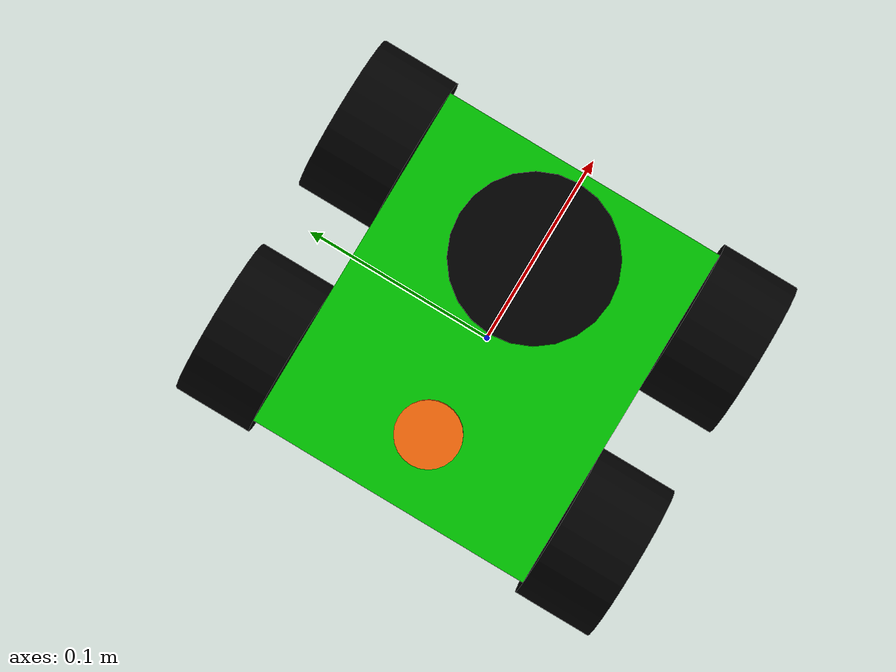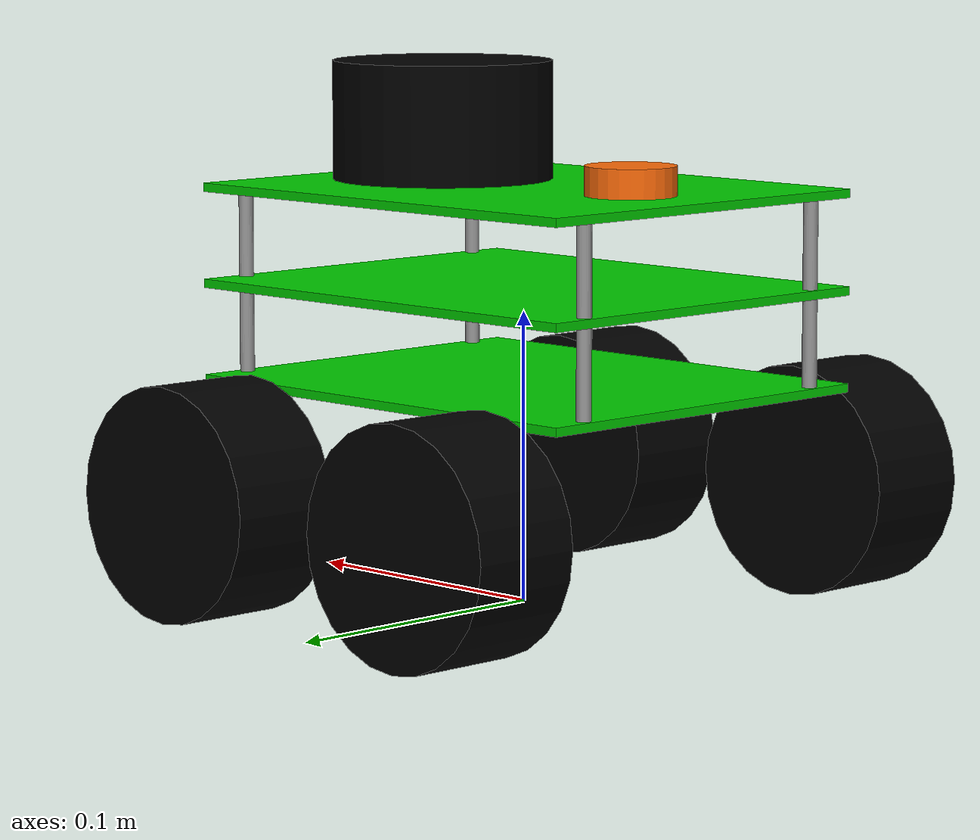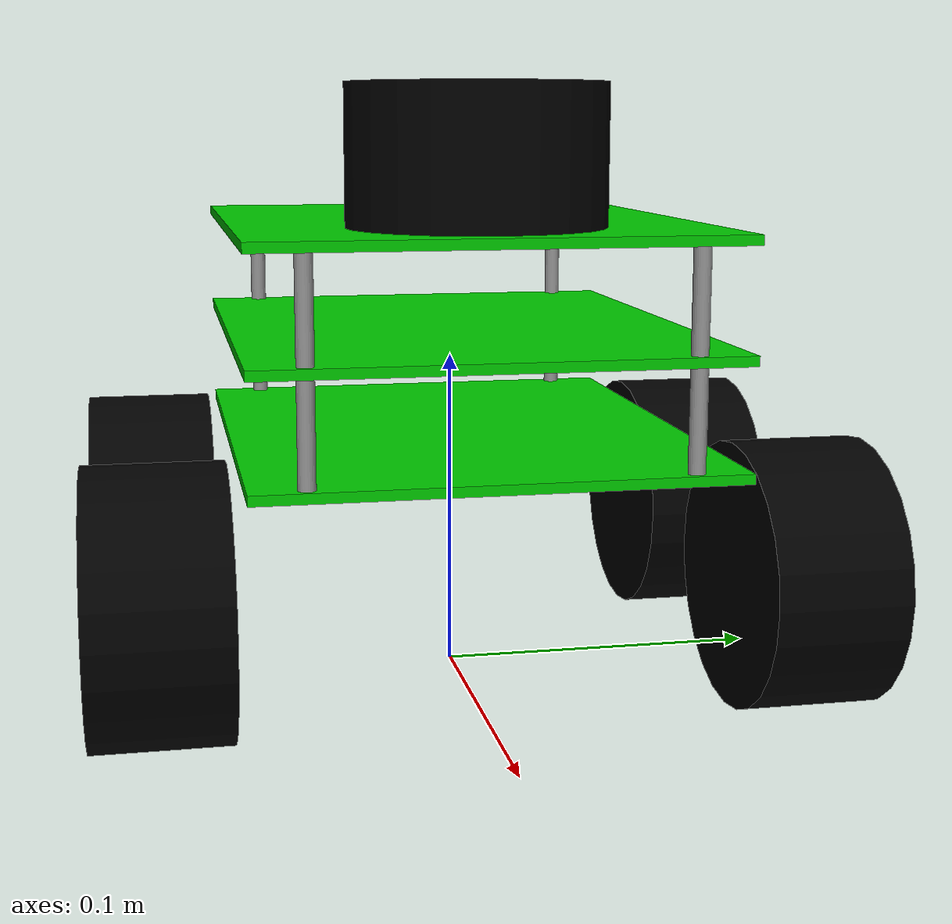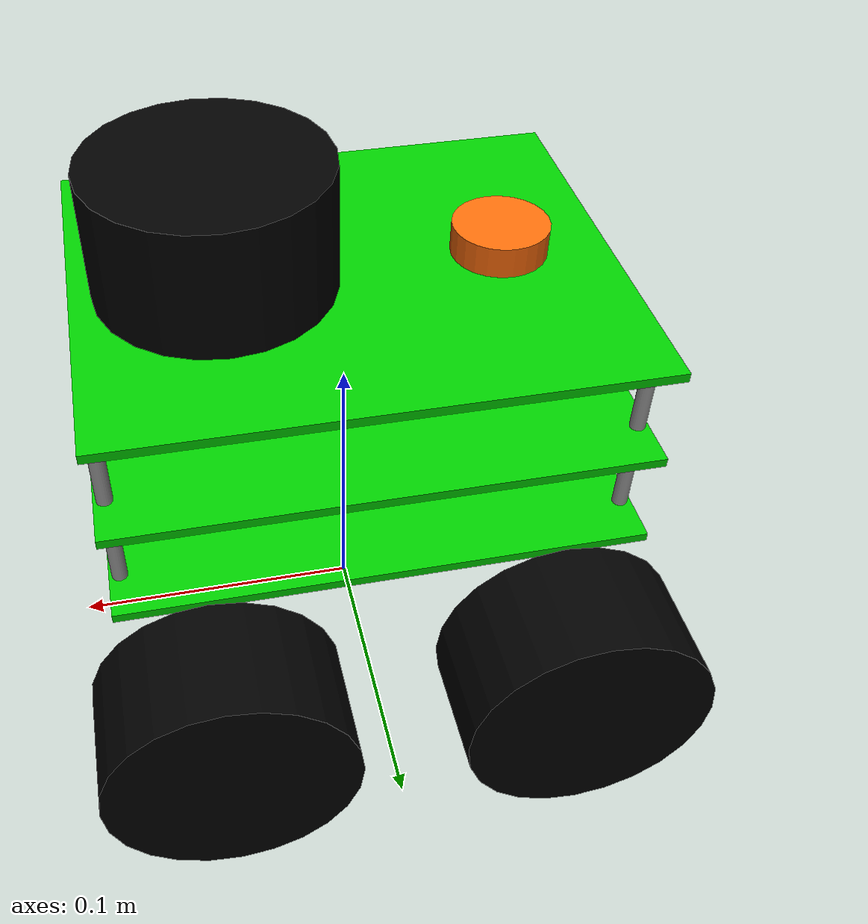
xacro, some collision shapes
<?xml version="1.0"?>
<!-- Main URDF including controller info -->
<robot name="embla" xmlns:xacro="http://www.ros.org/wiki/xacro">

  <!-- Base URDF -->
  <xacro:include filename="embla_description.urdf.xacro" />

  <!-- Import ros2_control -->
  <xacro:include filename="$(find embla_controller)/urdf/embla.ros2_control.xacro" />
  <xacro:embla_ros2_control name="Embla" />
</robot>

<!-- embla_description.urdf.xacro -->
<robot name="embla" xmlns:xacro="http://www.ros.org/wiki/xacro">
	<xacro:property name="PI" value="3.1415926535897931" />

	<!-- Chassis info -->
	<!-- three 3 mm plates + 30 mm spacers between -->
	<xacro:property name="chassisHeight" value="0.069" />
	<xacro:property name="chassisLength" value="0.17" />
	<xacro:property name="chassisWidth" value="0.14" />
	<!-- Total 1950 including 4 x 80 g wheels. Wheels' mass and inertia are specified for each wheel -->
	<xacro:property name="chassisMass" value="1.630" />

	<!-- Distance to bottom of chassis -->
	<xacro:property name="chassisGroundClearance" value="0.074" />

	<!-- Wheel info -->
	<xacro:property name="wheelWidth" value="0.04" />
	<xacro:property name="wheelRadius" value="0.04" />
	<xacro:property name="wheelMass" value="0.08" />

	<!-- Sideways distance between wheel centers -->
	<xacro:property name="wheelYDistance" value="0.1875" />

	<!-- Front/back distance between wheel centers -->
	<xacro:property name="wheelXDistance" value="0.1125" />

	<xacro:include filename="$(find embla_controller)/urdf/macros.xacro" />
	<xacro:include filename="materials.xacro" />

	<link name="base_footprint" />

	<joint name="base_joint" type="fixed">
		<parent link="base_footprint" />
		<child link="base_link" />
		<origin xyz="0 0 ${chassisGroundClearance + chassisHeight/2}" />
	</joint>

	<link name="base_link">
		<collision>
			<origin xyz="0 0 0" rpy="0 0 0" />
			<geometry>
				<box size="${chassisLength} ${chassisWidth} ${chassisHeight}" />
			</geometry>
		</collision>

		<!-- Middle plate -->
		<visual>
			<origin xyz="0 0 0" rpy="0 0 0" />
			<geometry>
				<box size="${chassisLength} ${chassisWidth} 0.003" />
			</geometry>
			<material name="green" />
		</visual>
		<visual name="spacer">
			<origin xyz="${chassisLength/2 - 0.0035} ${chassisWidth/2 - 0.016} 0.0165" rpy="0 0 0" />
			<geometry>
				<cylinder length="0.03" radius="0.0025" />
			</geometry>
			<material name="lightGrey" />
		</visual>
		<visual name="spacer">
			<origin xyz="${chassisLength/2 - 0.0035} ${-chassisWidth/2 + 0.016} 0.0165" rpy="0 0 0" />
			<geometry>
				<cylinder length="0.03" radius="0.0025" />
			</geometry>
			<material name="lightGrey" />
		</visual>
		<visual name="spacer">
			<origin xyz="${-chassisLength/2 + 0.0035} ${chassisWidth/2 - 0.016} 0.0165" rpy="0 0 0" />
			<geometry>
				<cylinder length="0.03" radius="0.0025" />
			</geometry>
			<material name="lightGrey" />
		</visual>
		<visual name="spacer">
			<origin xyz="${-chassisLength/2 + 0.0035} ${-chassisWidth/2 + 0.016} 0.0165" rpy="0 0 0" />
			<geometry>
				<cylinder length="0.03" radius="0.0025" />
			</geometry>
			<material name="lightGrey" />
		</visual>

		<!-- Top plate -->
		<visual>
			<origin xyz="0 0 0.033" rpy="0 0 0" />
			<geometry>
				<box size="${chassisLength} ${chassisWidth} 0.003" />
			</geometry>
			<material name="green" />
		</visual>

		<!-- Bottom plate -->
		<visual>
			<origin xyz="0 0 -0.033" rpy="0 0 0" />
			<geometry>
				<box size="${chassisLength} ${chassisWidth} 0.003" />
			</geometry>
			<material name="green" />
		</visual>
		<visual name="spacer">
			<origin xyz="${chassisLength/2 - 0.0035} ${chassisWidth/2 - 0.016} -0.0165" rpy="0 0 0" />
			<geometry>
				<cylinder length="0.03" radius="0.0025" />
			</geometry>
			<material name="lightGrey" />
		</visual>
		<visual name="spacer">
			<origin xyz="${chassisLength/2 - 0.0035} ${-chassisWidth/2 + 0.016} -0.0165" rpy="0 0 0" />
			<geometry>
				<cylinder length="0.03" radius="0.0025" />
			</geometry>
			<material name="lightGrey" />
		</visual>
		<visual name="spacer">
			<origin xyz="${-chassisLength/2 + 0.0035} ${chassisWidth/2 - 0.016} -0.0165" rpy="0 0 0" />
			<geometry>
				<cylinder length="0.03" radius="0.0025" />
			</geometry>
			<material name="lightGrey" />
		</visual>
		<visual name="spacer">
			<origin xyz="${-chassisLength/2 + 0.0035} ${-chassisWidth/2 + 0.016} -0.0165"
				rpy="0 0 0" />
			<geometry>
				<cylinder length="0.03" radius="0.0025" />
			</geometry>
			<material name="lightGrey" />
		</visual>

		<inertial>
			<origin xyz="0 0 0" rpy="0 0 0" />
			<mass value="${chassisMass}" />
			<xacro:box_inertia m="${chassisMass}" x="${chassisLength}" y="${chassisWidth}"
				z="${chassisHeight}" />
		</inertial>
	</link>
	<gazebo reference="base_link">
		<material>Gazebo/Green</material>
	</gazebo>
	<gazebo reference="spacer">
		<material>Gazebo/lightGrey</material>
	</gazebo>

	<!-- Add wheels -->
	<xacro:include filename="wheel.xacro" />
	<xacro:wheel lr="left" fr="front" tY="1" tX="1" />
	<xacro:wheel lr="right" fr="front" tY="-1" tX="1" />
	<xacro:wheel lr="left" fr="rear" tY="1" tX="-1" />
	<xacro:wheel lr="right" fr="rear" tY="-1" tX="-1" />

	<!-- Lidar -->
	<xacro:include filename="lidar.xacro" />

	<!-- IMU -->
	<xacro:include filename="imu.xacro" />
</robot>

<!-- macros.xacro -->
<robot name="embla" xmlns:xacro="http://www.ros.org/wiki/xacro">
	<xacro:macro name="cylinder_inertia" params="m r h">
		<inertia ixx="${m*(3*r*r+h*h)/12}" ixy="0" ixz="0" iyy="${m*(3*r*r+h*h)/12}" iyz="0"
			izz="${m*r*r/2}" />
	</xacro:macro>

	<xacro:macro name="box_inertia" params="m x y z">
		<inertia ixx="${m*(y*y+z*z)/12}" ixy="0" ixz="0" iyy="${m*(x*x+z*z)/12}" iyz="0"
			izz="${m*(x*x+z*z)/12}" />
	</xacro:macro>

	<xacro:macro name="sphere_inertia" params="m r">
		<inertia ixx="${2*m*r*r/5}" ixy="0" ixz="0" iyy="${2*m*r*r/5}" iyz="0" izz="${2*m*r*r/5}" />
	</xacro:macro>
</robot>

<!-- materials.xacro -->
<robot name="embla" xmlns:xacro="http://www.ros.org/wiki/xacro">
	<material name="black">
		<color rgba="0.0 0.0 0.0 1.0" />
	</material>

	<material name="blue">
		<color rgba="0.0 0.0 0.8 1.0" />
	</material>

	<material name="green">
		<color rgba="0.0 0.8 0.0 1.0" />
	</material>

	<material name="lightGrey">
		<color rgba="0.6 0.6 0.6 1.0" />
	</material>

	<material name="grey">
		<color rgba="0.2 0.2 0.2 1.0" />
	</material>

	<material name="orange">
		<color rgba="${255/255} ${108/255} ${10/255} 1.0" />
	</material>

	<material name="brown">
		<color rgba="${222/255} ${207/255} ${195/255} 1.0" />
	</material>

	<material name="red">
		<color rgba="0.8 0.0 0.0 1.0" />
	</material>

	<material name="white">
		<color rgba="1.0 1.0 1.0 1.0" />
	</material>

</robot>

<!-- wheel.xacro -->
<robot name="embla" xmlns:xacro="http://www.ros.org/wiki/xacro">
	<xacro:macro name="wheel" params="lr fr tY tX">
		<joint name="${lr}_${fr}_wheel_joint" type="continuous">
			<parent link="base_link" />
			<child link="${lr}_${fr}_wheel" />
			<origin
				xyz="${tX * wheelXDistance/2} ${tY * wheelYDistance/2} ${-chassisHeight/2 - (chassisGroundClearance - wheelRadius)}" />
			<axis xyz="0 1 0" rpy="0 0 0" />
			<limit effort="100" velocity="100" />
			<joint_properties damping="0.0" friction="0.5" />
		</joint>

		<link name="${lr}_${fr}_wheel">
			<collision>
				<origin xyz="0 0 0" rpy="${PI/2} 0 0" />
				<geometry>
					<cylinder length="${wheelWidth}" radius="${wheelRadius}" />
				</geometry>
				<surface>
					<friction>
						<ode>
							<mu>200</mu>
							<mu2>100</mu2>
						</ode>
					</friction>
				</surface>
			</collision>

			<visual>
				<origin xyz="0 0 0" rpy="${PI/2} 0 0" />
				<geometry>
					<cylinder length="${wheelWidth}" radius="${wheelRadius}" />
				</geometry>
				<material name="black" />
			</visual>

			<inertial>
				<origin xyz="0 0 0" rpy="${PI/2} 0 0" />
				<mass value="${wheelMass}" />
				<xacro:cylinder_inertia m="${wheelMass}" r="${wheelRadius}" h="${wheelWidth}" />
			</inertial>
		</link>

		<!-- Gazebo sim -->
		<gazebo reference="${lr}_${fr}_wheel">
			<material>Gazebo/FlatBlack</material>
			<mu1>100000000000000.0</mu1>
			<mu2>1000000000.0</mu2>
			<kp>1000000000000.0</kp>
			<kd>10.0</kd>
			<minDepth>0.001</minDepth>
			<maxVel>0.1</maxVel>
			<fdir1>1 0 0</fdir1>
		</gazebo>

		<transmission name="${lr}_${fr}_trans">
			<type>transmission_interface/SimpleTransmission</type>
			<joint name="${lr}_${fr}_wheel_joint" role="joint_${lr}_${fr}">
				<hardwareInterface>hardware_interface/VelocityJointInterface</hardwareInterface>
				<mechanicalReduction>1</mechanicalReduction>
			</joint>
			<actuator name="${lr}_${fr}_motor" role="actuator_${lr}_${fr}" />
		</transmission>
	</xacro:macro>
</robot>

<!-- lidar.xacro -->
<robot name="embla" xmlns:xacro="http://www.ros.org/wiki/xacro">
	<!-- Lidar -->
	<xacro:property name="lidarHeight" value="0.041" />
	<xacro:property name="lidarDiameter" value="0.076" />
	<xacro:property name="lidarMass" value="0.190" />

	<joint name="lidar_joint" type="fixed">
		<parent link="base_link" />
		<child link="lidar_link" />
		<origin xyz="0.04 0 ${chassisHeight/2 + lidarHeight/2}" rpy="0 0 ${PI}" />
	</joint>

	<link name="lidar_link">
		<collision>
			<origin xyz="0 0 0" rpy="0 0 0" />
			<geometry>
				<cylinder length="${lidarHeight}" radius="${lidarDiameter/2}" />
			</geometry>
		</collision>

		<visual>
			<origin xyz="0 0 -${lidarHeight/2}" rpy="${PI/2} 0 ${3*PI/2}" />
			<geometry>
				<mesh filename="package://embla_controller/urdf/meshes/rplidar.dae"
					scale="0.001 0.001 0.001" />
			</geometry>
			<material name="black" />
		</visual>

		<inertial>
			<origin xyz="0 0 0" rpy="0 0 0" />
			<mass value="${lidarMass}" />
			<xacro:cylinder_inertia m="${lidarMass}" r="${lidarDiameter/2}" h="${lidarHeight}" />
		</inertial>
	</link>

	<!-- from ROSbot 2.0
	https://github.com/husarion/rosbot_description/blob/master/src/rosbot_description/urdf/rosbot.xacro -->
	<!-- RpLidar using GPU -->
	<gazebo reference="lidar_link">
		<sensor type="gpu_ray" name="head_rplidar_sensor">
			<pose>0 0 0.06 0 0 0</pose>
			<visualize>false</visualize>
			<update_rate>40</update_rate>
			<ray>
				<scan>
					<horizontal>
						<samples>720</samples>
						<resolution>1</resolution>
						<min_angle>-${PI}</min_angle>
						<max_angle>${PI}</max_angle>
					</horizontal>
				</scan>
				<range>
					<min>0.2</min>
					<max>12.0</max>
					<resolution>0.01</resolution>
				</range>
				<noise>
					<type>gaussian</type>
					<mean>0.0</mean>
					<stddev>0.01</stddev>
				</noise>
			</ray>
			<plugin name="gazebo_ros_head_rplidar_controller" filename="libgazebo_ros_gpu_laser.so">
				<topicName>scan</topicName>
				<frameName>lidar_link</frameName>
			</plugin>
		</sensor>
		<material>Gazebo/Black</material>
	</gazebo>

</robot>

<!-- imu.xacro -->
<robot name="embla" xmlns:xacro="http://www.ros.org/wiki/xacro">
	<!-- IMU -->
	<xacro:property name="imuHeight" value="0.010" />
	<xacro:property name="imuDiameter" value="0.031" />
	<xacro:property name="imuMass" value="0.030" />

	<joint name="imu_joint" type="fixed">
		<parent link="base_link" />
		<child link="imu_link" />
		<!-- Origin is at center of IMU which is placed on chassis top, a little back from midpoint -->
		<origin xyz="-0.05 0 ${chassisHeight/2 + imuHeight/2}" rpy="0 0 0" />
	</joint>

	<link name="imu_link">
		<collision>
			<origin xyz="0 0 0" rpy="0 0 0" />
			<geometry>
				<cylinder length="${imuHeight}" radius="${imuDiameter/2}" />
			</geometry>
		</collision>
		<visual>
			<origin xyz="0 0 0" rpy="0 0 0" />
			<geometry>
				<cylinder length="${imuHeight}" radius="${imuDiameter/2}" />
			</geometry>
			<material name="orange" />
		</visual>
		<inertial>
			<origin xyz="0 0 0" rpy="0 0 0" />
			<mass value="${imuMass}" />
			<xacro:cylinder_inertia m="${imuMass}" r="${imuDiameter/2}" h="${imuHeight}" />
		</inertial>
	</link>

	<gazebo reference="imu_link">
		<material>Gazebo/Orange</material>
	</gazebo>

	<!-- Team Hector's IMU plugin https://github.com/tu-darmstadt-ros-pkg/hector_gazebo -->
	<gazebo>
		<plugin name="imu_controller" filename="libhector_gazebo_ros_imu.so">
			<robotNamespace>/</robotNamespace>
			<updateRate>50.0</updateRate>
			<bodyName>imu_link</bodyName>
			<topicName>imu/data</topicName>
			<accelDrift>0.005 0.005 0.005</accelDrift>
			<accelGaussianNoise>0.005 0.005 0.005</accelGaussianNoise>
			<rateDrift>0.005 0.005 0.005 </rateDrift>
			<rateGaussianNoise>0.005 0.005 0.005 </rateGaussianNoise>
			<headingDrift>0.005</headingDrift>
			<headingGaussianNoise>0.005</headingGaussianNoise>
		</plugin>
	</gazebo>

</robot>
